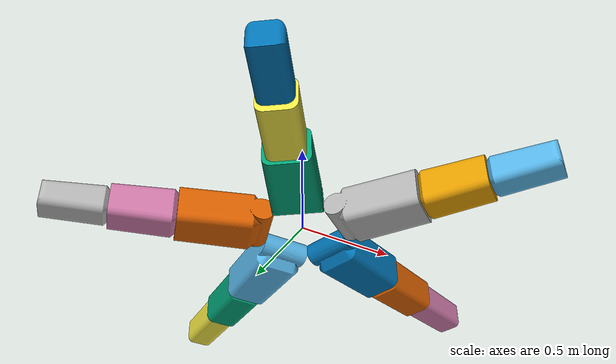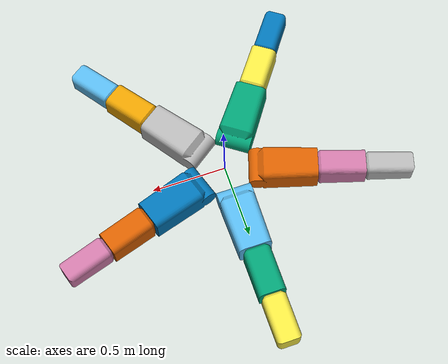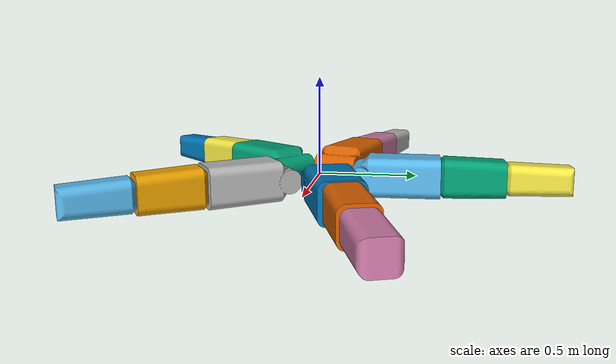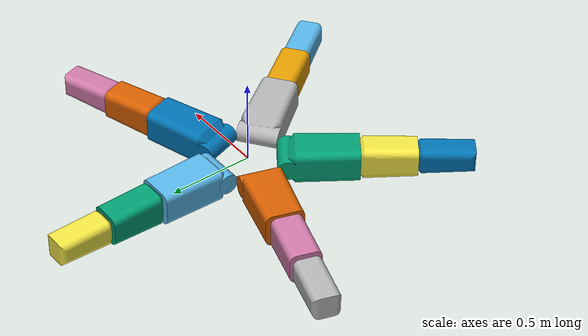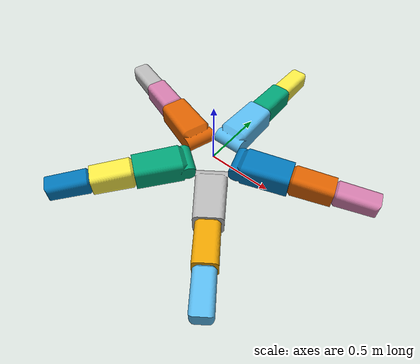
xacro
<?xml version="1.0"?>
<robot name="buer" xmlns:xacro="http://www.ros.org/wiki/xacro">

  <!-- Global parameters -->
  <xacro:property name="global_scale" value="0.0004"/>
  <xacro:property name="mesh_path" value="stl"/>

  <!-- Macros -->
  <xacro:macro name="inertial_block" params="mass ixx iyy izz ox oy oz">
    <inertial>
      <origin xyz="${ox*global_scale} ${oy*global_scale} ${oz*global_scale}" rpy="0 0 0"/>
      <mass value="${mass}"/>
      <inertia ixx="${ixx}" ixy="0" ixz="0" iyy="${iyy}" iyz="0" izz="${izz}"/>
    </inertial>
  </xacro:macro>

  <xacro:macro name="mesh_link" params="name file mass ixx iyy izz ox oy oz">
    <link name="${name}">
      <visual>
        <geometry>
          <mesh filename="${mesh_path}/${file}" scale="${global_scale} ${global_scale} ${global_scale}"/>
        </geometry>
      </visual>
      <collision>
        <geometry>
          <mesh filename="${mesh_path}/${file}" scale="${global_scale} ${global_scale} ${global_scale}"/>
        </geometry>
      </collision>
      <xacro:inertial_block mass="${mass}" ixx="${ixx}" iyy="${iyy}" izz="${izz}" ox="${ox}" oy="${oy}" oz="${oz}"/>
    </link>
  </xacro:macro>

  <!-- Base link -->
  <link name="head">
    <visual>
      <geometry>
        <mesh filename="${mesh_path}/head.stl" scale="${global_scale} ${global_scale} ${global_scale}"/>
      </geometry>
    </visual>
    <collision>
      <geometry>
        <cylinder radius="${1.0*global_scale}" length="${1.0*global_scale}"/>
      </geometry>
    </collision>
    <inertial>
      <origin xyz="0 0 0" rpy="0 0 0"/>
      <mass value="8.0"/>
      <inertia ixx="1.5" ixy="0" ixz="0" iyy="1.5" iyz="0" izz="2.0"/>
    </inertial>
    <sensor type="imu" name="imu">
      <origin xyz="0 0 0" rpy="0 0 0"/>
    </sensor>
  </link>

  <!-- Leg macro -->
  <xacro:macro name="leg" params="idx lx ly lz lroll lpitch lyaw calf_rpy">
    <!-- Lap link -->
    <xacro:mesh_link name="leg${idx}_lap" file="lap.stl" mass="1.2" ixx="0.08" iyy="0.08" izz="0.01" ox="0" oy="0" oz="0.5"/>
    <joint name="leg${idx}_lap_joint" type="revolute">
      <parent link="head"/>
      <child link="leg${idx}_lap"/>
      <origin xyz="${lx*global_scale} ${ly*global_scale} ${lz*global_scale}" rpy="${lroll} ${lpitch} ${lyaw}"/>
      <axis xyz="1 0 0"/>
      <limit effort="100.0" velocity="10.0" lower="-0.5" upper="0.5"/>
    </joint>

    <!-- Calf link -->
    <xacro:mesh_link name="leg${idx}_calf" file="calf.stl" mass="0.8" ixx="0.04" iyy="0.04" izz="0.005" ox="0" oy="0" oz="0.4"/>
    <joint name="leg${idx}_calf_joint" type="revolute">
      <parent link="leg${idx}_lap"/>
      <child link="leg${idx}_calf"/>
      <origin xyz="${0*global_scale} ${0*global_scale} ${1000*global_scale}" rpy="0 0 ${calf_rpy}"/>
      <axis xyz="1 0 0"/>
      <limit effort="100.0" velocity="10.0" lower="-2.0" upper="2.0"/>
    </joint>

    <!-- Foot link -->
    <xacro:mesh_link name="leg${idx}_foot" file="foot.stl" mass="0.5" ixx="0.02" iyy="0.02" izz="0.002" ox="0" oy="0" oz="0"/>
    <joint name="leg${idx}_foot_joint" type="revolute">
      <parent link="leg${idx}_calf"/>
      <child link="leg${idx}_foot"/>
      <origin xyz="${0*global_scale} ${0*global_scale} ${800*global_scale}" rpy="0 0 0"/>
      <axis xyz="1 0 0"/>
      <limit effort="100.0" velocity="10.0" lower="-2.0" upper="2.0"/>
    </joint>
  </xacro:macro>

  <!-- Instantiate legs -->
  <xacro:leg idx="1" lx="0" ly="550.5528" lz="0" lroll="-1.57" lpitch="0" lyaw="0" calf_rpy="1.5708"/>
  <xacro:leg idx="2" lx="523.6" ly="170.1" lz="0" lroll="-1.57" lpitch="0" lyaw="-1.257" calf_rpy="1.5708"/>
  <xacro:leg idx="3" lx="323.6" ly="-445.4" lz="0" lroll="-1.57" lpitch="0" lyaw="-2.513" calf_rpy="1.5708"/>
  <xacro:leg idx="4" lx="-323.6" ly="-445.4" lz="0" lroll="-1.57" lpitch="0" lyaw="2.513" calf_rpy="1.5708"/>
  <xacro:leg idx="5" lx="-523.6" ly="170.1" lz="0" lroll="-1.57" lpitch="0" lyaw="1.257" calf_rpy="1.5708"/>

</robot>
